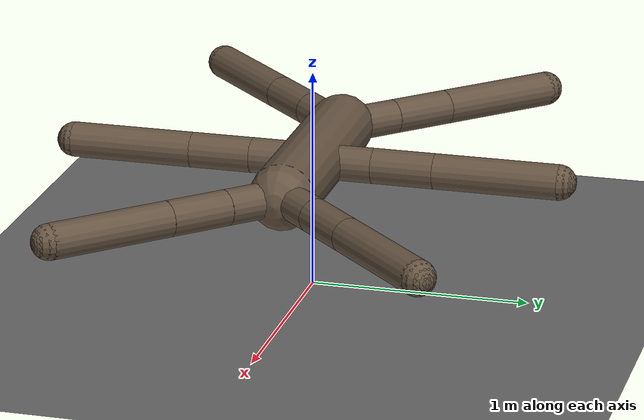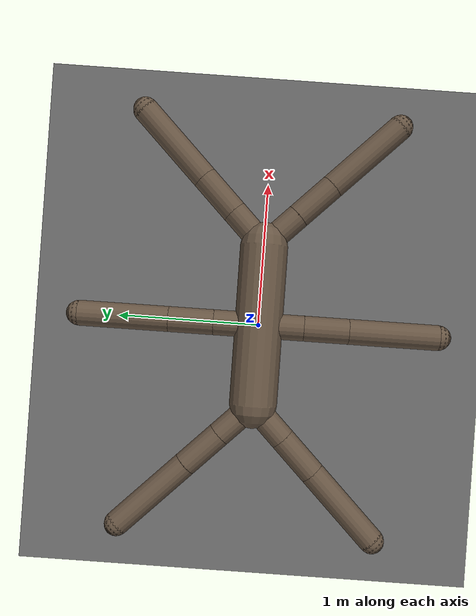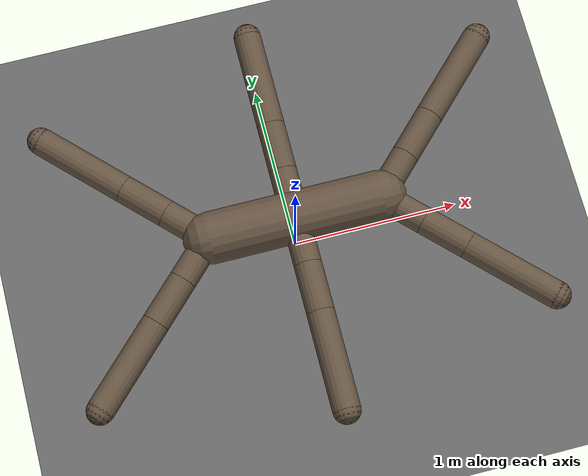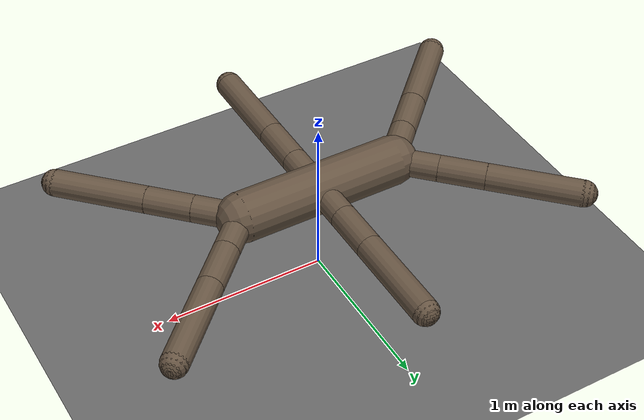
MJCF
<mujoco model="ant">
  <compiler angle="degree" coordinate="local" inertiafromgeom="true"/>
  <option timestep="0.01" iterations="4" />
  <custom>
    <numeric data="0.0 0.0 0.589 1.0 0.0 0.0 0.0 0.0 1.0 0.0 -1.0 0.0 -1.0 0.0 1.0 0.0 -1.0 0.0 1.0" name="init_qpos"/>
    <numeric data="1000" name="constraint_limit_stiffness"/>
    <numeric data="4000" name="constraint_stiffness"/>
    <numeric data="10"   name="constraint_ang_damping"/>
    <numeric data="20"   name="constraint_vel_damping"/>
    <numeric data="0.5"  name="joint_scale_pos"/>
    <numeric data="0.2"  name="joint_scale_ang"/>
    <numeric data="0.0"  name="ang_damping"/>
    <numeric data="1"    name="spring_mass_scale"/>
    <numeric data="1"    name="spring_inertia_scale"/>
    <numeric data="15"   name="solver_maxls"/>
  </custom>
  <default>
    <joint armature="1" damping="1" limited="true"/>
    <geom contype="0" conaffinity="0" condim="3" density="5.0" friction="1 0.5 0.5"
     rgba="0.4 0.33 0.26 1.0"/>
  </default>
  <asset>
    <texture builtin="gradient" height="100" rgb1="1 1 1" rgb2="0 0 0" type="skybox" width="100"/>
    <texture builtin="flat" height="1278" mark="cross" markrgb="1 1 1" name="texgeom" random="0.01" rgb1="0.8 0.6 0.4" rgb2="0.8 0.6 0.4" type="cube" width="127"/>
    <texture builtin="checker" height="100" name="texplane" rgb1="0 0 0" rgb2="0.8 0.8 0.8" type="2d" width="100"/>
    <material name="MatPlane" reflectance="0.5" shininess="1" specular="1" texrepeat="60 60" texture="texplane"/>
    <material name="geom" texture="texgeom" texuniform="true"/>
  </asset>
  <worldbody>
    <light cutoff="100" diffuse="1 1 1" dir="-0 0 -1.3" directional="true" exponent="1" pos="0 0 1.3" specular=".1 .1 .1"/>
    <geom conaffinity="1" condim="3" material="MatPlane" name="floor" pos="0 0 0" size="500 500 500" type="plane" rgba="0.5 0.5 0.5 1.0"/>
    <body name="torso" pos="0 0 0.589">
      <camera name="track" mode="trackcom" pos="0 -3 0.3" xyaxes="1 0 0 0 0 1"/>
      <geom name="torso_geom" fromto="-0.5 0 0 0.5 0 0" size="0.15" type="capsule"/>
      <joint armature="0" damping="0" limited="false" margin="0.01" name="root" pos="0 0 0" type="free"/>
      <body name="front_left_leg" pos="0.5 0 0">
        <geom fromto="0 0 0 0.2 0.2 0" name="aux_1_geom" size="0.08" type="capsule"/>
        <body name="aux_1" pos="0.2 0.2 0">
          <joint axis="0 0 1" name="hip_1" pos="0 0 0" range="-30 30" type="hinge"/>
          <geom fromto="0 0 0 0.2 0.2 0" name="left_leg_geom" size="0.08" type="capsule"/>
          <body name="ankle_body_1" pos="0.2 0.2 0">
            <joint axis="-1 1 0" name="ankle_1" pos="0 0 0" range="30 70" type="hinge"/>
            <geom fromto="0 0 0 0.4 0.4 0" name="left_ankle_geom" size="0.08" type="capsule"/>
            <geom name="left_foot_geom" contype="1" pos="0.4 0.4 0" size="0.08" type="sphere" mass="0"/>
            <site name="foot_site_1" pos="0.4 0.4 0" size="0.02"/>
          </body>
        </body>
      </body>
      <body name="front_right_leg" pos="-0.5 0 0">
        <geom fromto="0 0 0 -0.2 0.2 0" name="aux_2_geom" size="0.08" type="capsule"/>
        <body name="aux_2" pos="-0.2 0.2 0">
          <joint axis="0 0 1" name="hip_2" pos="0 0 0" range="-30 30" type="hinge"/>
          <geom fromto="0 0 0 -0.2 0.2 0" name="right_leg_geom" size="0.08" type="capsule"/>
          <body name="ankle_body_2" pos="-0.2 0.2 0">
            <joint axis="1 1 0" name="ankle_2" pos="0 0 0" range="-70 -30" type="hinge"/>
            <geom fromto="0 0 0 -0.4 0.4 0" name="right_ankle_geom" size="0.08" type="capsule"/>
            <geom name="right_foot_geom" contype="1" pos="-0.4 0.4 0" size="0.08" type="sphere" mass="0"/>
            <site name="foot_site_2" pos="-0.4 0.4 0" size="0.02"/>
          </body>
        </body>
      </body>
      <body name="middle_leg" pos="0.0 0 0">
        <geom fromto="0 0 0 0.0 -0.282 0" name="aux_5_geom" size="0.08" type="capsule"/>
        <body name="aux_5" pos="0.0 -0.282 0">
          <joint axis="0 0 1" name="hip_5" pos="0 0 0" range="-30 30" type="hinge"/>
          <geom fromto="0 0 0 0.0 -0.282 0" name="middle_leg_geom" size="0.08" type="capsule"/>
          <body name="ankle_body_5" pos="0.0 -0.282 0">
            <joint axis="-1 0 0" name="ankle_5" pos="0 0 0" range="-70 -30" type="hinge"/>
            <geom fromto="0 0 0 0.0 -0.565 0" name="fifth_ankle_geom" size="0.08" type="capsule"/>
            <geom name="fifth_foot_geom" contype="1" pos="0.0 -0.565 0" size="0.08" type="sphere" mass="0"/>
            <site name="foot_site_5" pos="0.0 -0.565 0" size="0.02"/>
          </body>
        </body>
      </body>
      <body name="middle_leg_right" pos="0.0 0 0">
        <geom fromto="0 0 0 0.0 0.282 0" name="aux_6_geom" size="0.08" type="capsule"/>
        <body name="aux_6" pos="0.0 0.282 0">
          <joint axis="0 0 1" name="hip_6" pos="0 0 0" range="-30 30" type="hinge"/>
          <geom fromto="0 0 0 0.0 0.282 0" name="middle_leg_right_geom" size="0.08" type="capsule"/>
          <body name="ankle_body_6" pos="0.0 0.282 0">
            <joint axis="1 0 0" name="ankle_6" pos="0 0 0" range="-70 -30" type="hinge"/>
            <geom fromto="0 0 0 0.0 0.565 0" name="sixth_ankle_geom" size="0.08" type="capsule"/>
            <geom name="sixth_foot_geom" contype="1" pos="0.0 0.565 0" size="0.08" type="sphere" mass="0"/>
            <site name="foot_site_6" pos="0.0 0.565 0" size="0.02"/>
          </body>
        </body>
      </body>
      <body name="back_leg" pos="-0.5 0 0">
        <geom fromto="0 0 0 -0.2 -0.2 0" name="aux_3_geom" size="0.08" type="capsule"/>
        <body name="aux_3" pos="-0.2 -0.2 0">
          <joint axis="0 0 1" name="hip_3" pos="0 0 0" range="-30 30" type="hinge"/>
          <geom fromto="0 0 0 -0.2 -0.2 0" name="back_leg_geom" size="0.08" type="capsule"/>
          <body name="ankle_body_3" pos="-0.2 -0.2 0">
            <joint axis="-1 1 0" name="ankle_3" pos="0 0 0" range="-70 -30" type="hinge"/>
            <geom fromto="0 0 0 -0.4 -0.4 0" name="third_ankle_geom" size="0.08" type="capsule"/>
            <geom name="third_foot_geom" contype="1" pos="-0.4 -0.4 0" size="0.08" type="sphere" mass="0"/>
            <site name="foot_site_3" pos="-0.4 -0.4 0" size="0.02"/>
          </body>
        </body>
      </body>
      <body name="right_back_leg" pos="0.5 0 0">
        <geom fromto="0 0 0 0.2 -0.2 0" name="aux_4_geom" size="0.08" type="capsule"/>
        <body name="aux_4" pos="0.2 -0.2 0">
          <joint axis="0 0 1" name="hip_4" pos="0 0 0" range="-30 30" type="hinge"/>
          <geom fromto="0 0 0 0.2 -0.2 0" name="rightback_leg_geom" size="0.08" type="capsule"/>
          <body name="ankle_body_4" pos="0.2 -0.2 0">
            <joint axis="1 1 0" name="ankle_4" pos="0 0 0" range="30 70" type="hinge"/>
            <geom fromto="0 0 0 0.4 -0.4 0" name="fourth_ankle_geom" size="0.08" type="capsule"/>
            <geom name="fourth_foot_geom" contype="1" pos="0.4 -0.4 0" size="0.08" type="sphere" mass="0"/>
            <site name="foot_site_4" pos="0.4 -0.4 0" size="0.02"/>
          </body>
        </body>
      </body>
    </body>
  </worldbody>
  <actuator>
    <motor ctrllimited="true" ctrlrange="-1.0 1.0" joint="hip_4"   gear="311.7"/>
    <motor ctrllimited="true" ctrlrange="-1.0 1.0" joint="ankle_4" gear="311.7"/>
    <motor ctrllimited="true" ctrlrange="-1.0 1.0" joint="hip_1"   gear="311.7"/>
    <motor ctrllimited="true" ctrlrange="-1.0 1.0" joint="ankle_1" gear="311.7"/>
    <motor ctrllimited="true" ctrlrange="-1.0 1.0" joint="hip_2"   gear="311.7"/>
    <motor ctrllimited="true" ctrlrange="-1.0 1.0" joint="ankle_2" gear="311.7"/>
    <motor ctrllimited="true" ctrlrange="-1.0 1.0" joint="hip_3"   gear="311.7"/>
    <motor ctrllimited="true" ctrlrange="-1.0 1.0" joint="ankle_3" gear="311.7"/>
    <motor ctrllimited="true" ctrlrange="-1.0 1.0" joint="hip_5"   gear="311.7"/>
    <motor ctrllimited="true" ctrlrange="-1.0 1.0" joint="ankle_5" gear="311.7"/>
    <motor ctrllimited="true" ctrlrange="-1.0 1.0" joint="hip_6"   gear="311.7"/>
    <motor ctrllimited="true" ctrlrange="-1.0 1.0" joint="ankle_6" gear="311.7"/>
  </actuator>
</mujoco>
